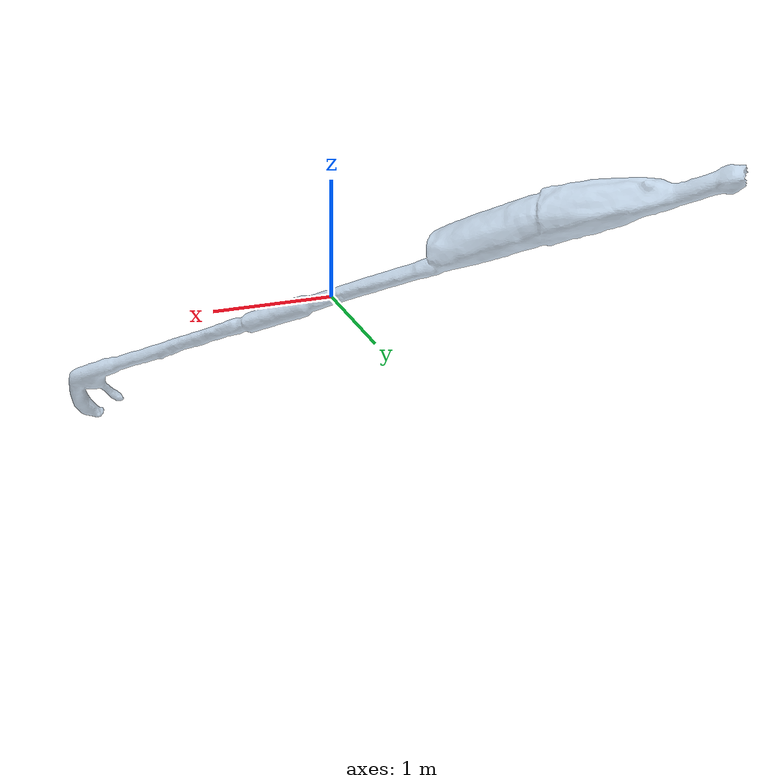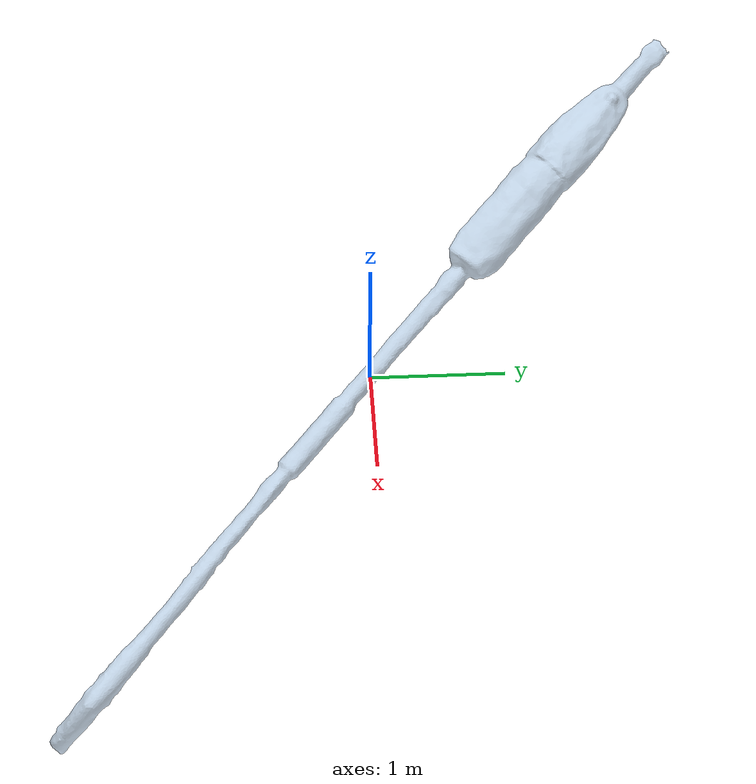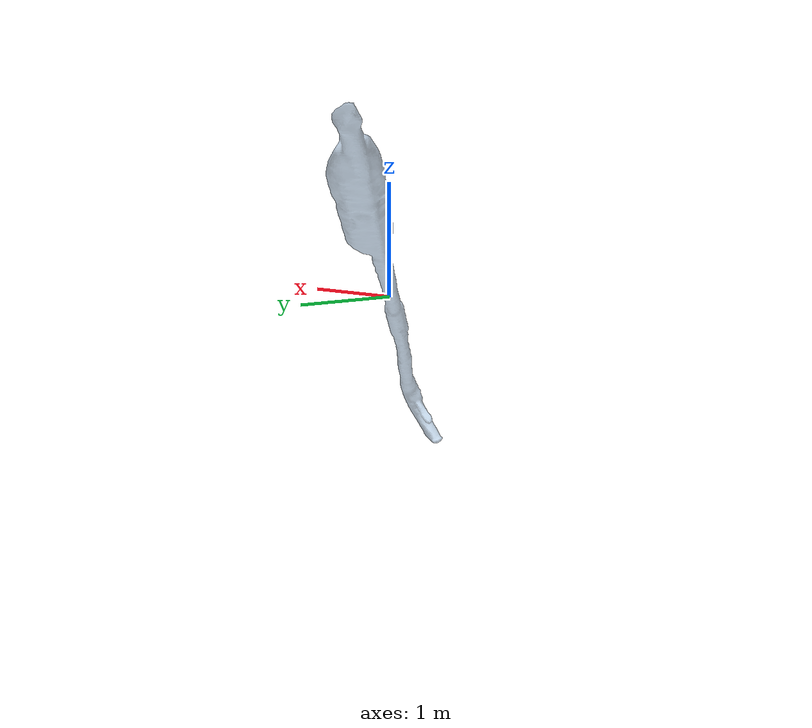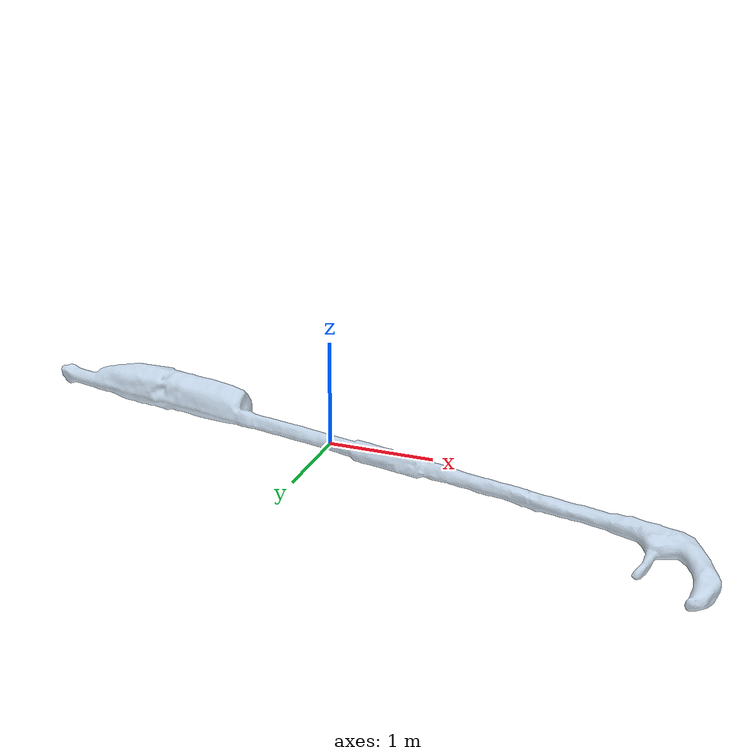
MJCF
<mujoco model="mop_top">
    <compiler meshdir="./"/>

    <default>
        <geom friction="0.9 0.5 0.5" rgba="0.7 0.8 0.9 0.7"/>
        <joint damping="0.5"/>
    </default>

    <asset>
        <mesh name="mop_top_mesh" file="mop_top.obj" scale="1 1 1"/>
    </asset>

    <worldbody>
        <body name="mop_top_link">
            <inertial pos="0 0 0" mass="0.1" diaginertia="0.002 0.002 0.002"/>
            <geom name="mop_top" type="mesh" mesh="mop_top_mesh"
                  pos="0 0 0" quat="1 0 0 0"
                  rgba="0.7 0.8 0.9 0.7"
                  friction="0.9 0.5 0.5"
                  solref="0.02 1"
                  solimp="0.9 0.95 0.001"/>
        </body>
    </worldbody>
</mujoco>
